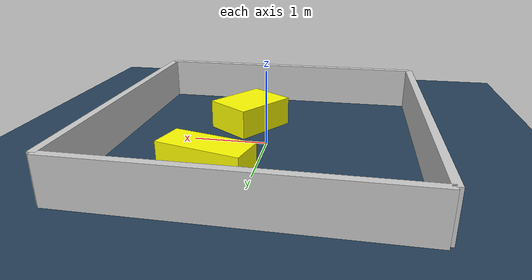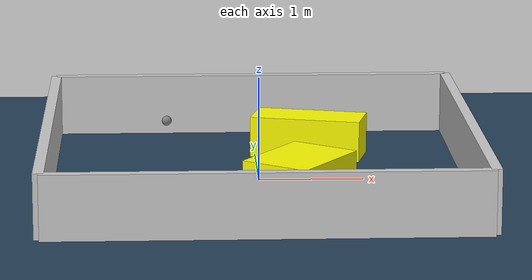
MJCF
<?xml version="1.0" ?>
<mujoco model="generated_environment">
  <option timestep="0.01" integrator="RK4" cone="elliptic"/>
  <default>
    <geom density="1"/>
  </default>
  <asset>
    <texture builtin="gradient" height="3072" rgb1="0.3 0.5 0.7" rgb2="0 0 0" type="skybox" width="512"/>
    <texture builtin="checker" height="300" mark="edge" markrgb="0.8 0.8 0.8" name="groundplane" rgb1="0.2 0.3 0.4" rgb2="0.1 0.2 0.3" type="2d" width="300"/>
    <material name="groundplane" reflectance="0.2" texrepeat="5 5" texture="groundplane" texuniform="true"/>
    <material name="robot" rgba="0.0 1.0 0.0 1"/>
  </asset>
  <worldbody>
    <light dir="0 0 -1" directional="true" pos="0 0 1.5"/>
    <geom condim="4" friction="1.0 0.005 0.001" material="groundplane" name="floor" size="0 0 0.05" type="plane"/>
    <body name="walls">
      <geom name="wall_1" condim="4" pos="-2.0 0.0 0.3" rgba="0.800000011920929 0.800000011920929 0.800000011920929 1.0" size="0.05 2.0 0.3" type="box"/>
      <geom name="wall_2" condim="4" pos="2.0 0.0 0.3" rgba="0.800000011920929 0.800000011920929 0.800000011920929 1.0" size="0.05 2.0 0.3" type="box"/>
      <geom name="wall_3" condim="4" pos="0.0 -2.0 0.3" rgba="0.800000011920929 0.800000011920929 0.800000011920929 1.0" size="2.0 0.05 0.3" type="box"/>
      <geom name="wall_4" condim="4" pos="0.0 2.0 0.3" rgba="0.800000011920929 0.800000011920929 0.800000011920929 1.0" size="2.0 0.05 0.3" type="box"/>
    </body>
    <body name="robot">
      <joint name="joint_x" type="slide" pos="0 0 0" axis="1 0 0"/>
      <joint name="joint_y" type="slide" pos="0 0 0" axis="0 1 0"/>
      <geom name="robot" type="sphere" pos="-0.8753238495948357 1.6556119641070999 0.2" size="0.05" mass="5." friction="1.0 0.005 0.0001" condim="4"/>
      <site name="sensor_ball"/>
    </body>
    <body name="obstacle_1_movable">
      <geom name="obstacle_1_movable" condim="4" pos="0.3555882180963268 -0.6516016458927478 0.2" euler="0 0 234.69150673424465" friction="1.0 0.005 0.001" rgba="1 1 0 1" size="0.4488843100365847 0.3418001867271813 0.2" type="box" mass="0.1"/>
      <joint type="free"/>
    </body>
    <body name="obstacle_2_movable">
      <geom name="obstacle_2_movable" condim="4" pos="0.5336541756034154 1.0026710212545744 0.2" euler="0 0 75.6271981918385" friction="1.0 0.005 0.001" rgba="1 1 0 1" size="0.22294422735869293 0.5456622499346966 0.2" type="box" mass="0.1"/>
      <joint type="free"/>
    </body>
  </worldbody>
  <actuator>
    <motor name="actuator_x" joint="joint_x" gear="1" ctrlrange="-1 1"/>
    <motor name="actuator_y" joint="joint_y" gear="1" ctrlrange="-1 1"/>
  </actuator>
</mujoco>
